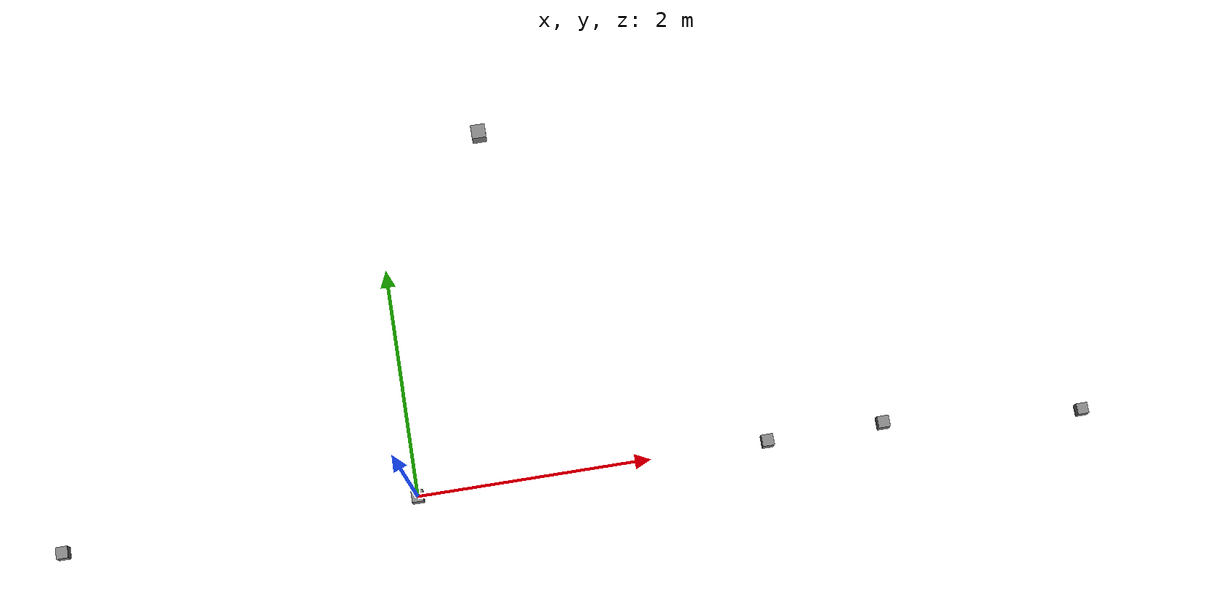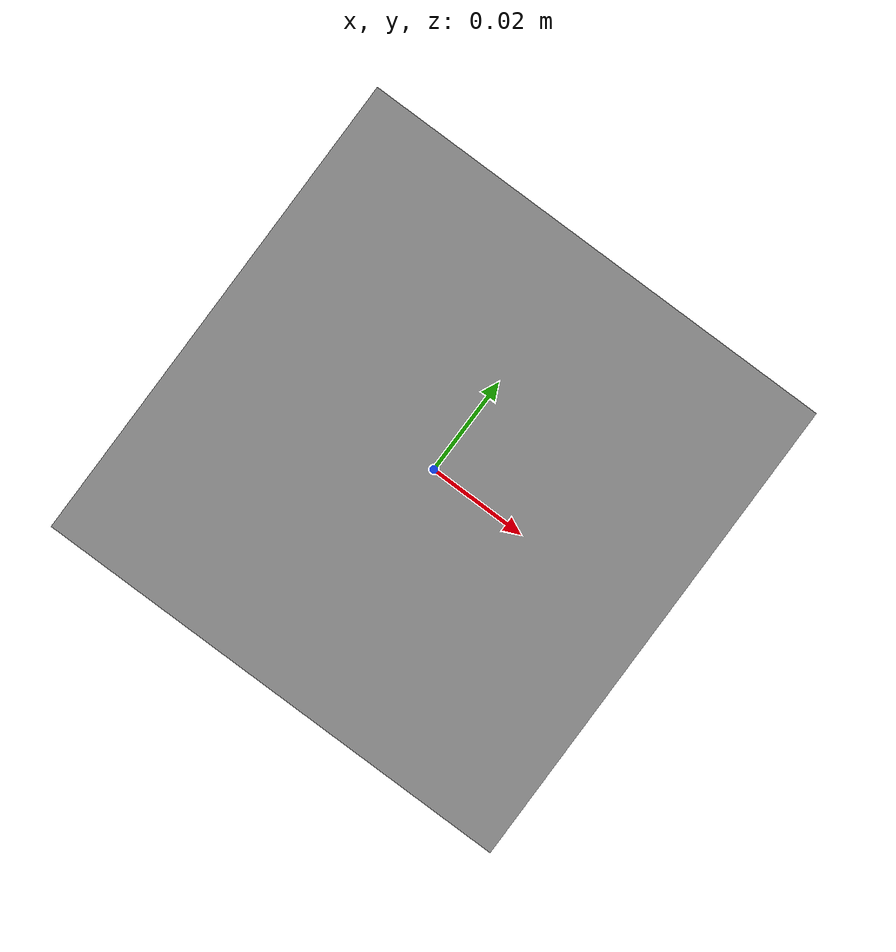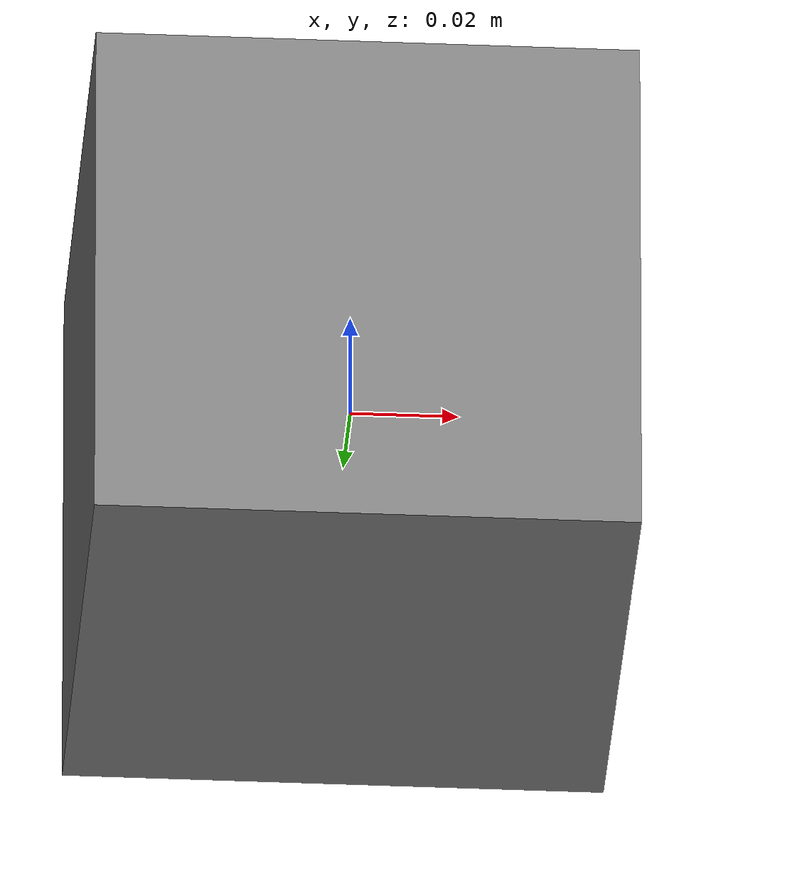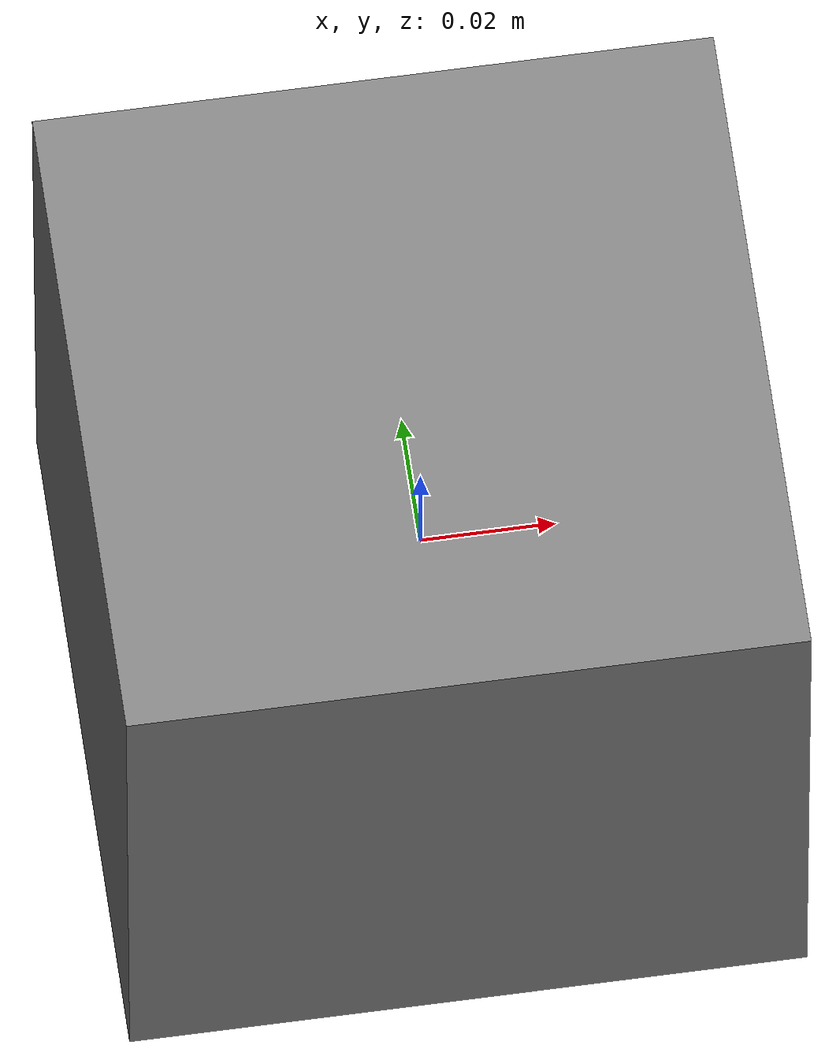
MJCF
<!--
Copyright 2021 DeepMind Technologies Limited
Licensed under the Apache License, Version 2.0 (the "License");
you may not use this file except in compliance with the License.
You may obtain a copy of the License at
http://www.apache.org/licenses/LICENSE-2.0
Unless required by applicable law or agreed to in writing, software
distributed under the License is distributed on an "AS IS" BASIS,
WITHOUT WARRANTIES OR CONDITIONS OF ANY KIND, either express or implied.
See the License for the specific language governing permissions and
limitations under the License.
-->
<mujoco>
  <!--
  Same as force_free.xml, but with a distractor constraint.
  -->
  <option gravity="1 2 3"/>

  <default>
    <!-- A cube of size 0.1^3 with density of 1000 has mass of 1. -->
    <geom size="0.05 0.05 0.05" type="box"/>
  </default>

  <worldbody>
    <body name="body0" pos="-3 0 0">
      <joint name="joint0" type="slide" axis="0 0 1"/>
      <geom/>
    </body>
    <body name="body1">
      <geom/>
      <site name="sensor"/>
    </body>
    <body name="body2" pos="1 2 3">
      <joint type="free"/>
      <geom/>
    </body>
    <body name="body3" pos="3 0 0">
      <geom/>
      <body name="body3b" pos="3 0 -1">
        <joint type="slide" axis="0 0 1" frictionloss="9"/>
        <geom/>
      </body>
    </body>
    <body name="body4" pos="4 0 0">
      <joint type="free"/>
      <geom/>
    </body>
  </worldbody>

  <equality>
    <joint joint1="joint0"/>
    <weld body1="body3" body2="body4"/>
    <weld body1="body1" body2="body2" anchor="0 0 0" torquescale="0"/>
  </equality>

  <sensor>
    <force site="sensor" user="-2 -4 -6"/>
  </sensor>
</mujoco>
